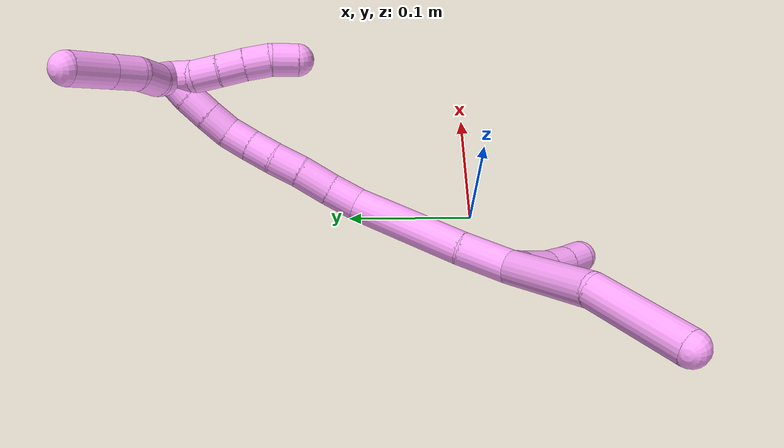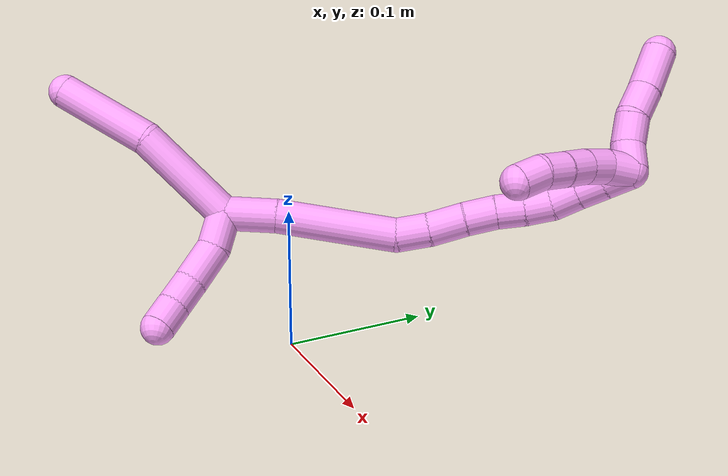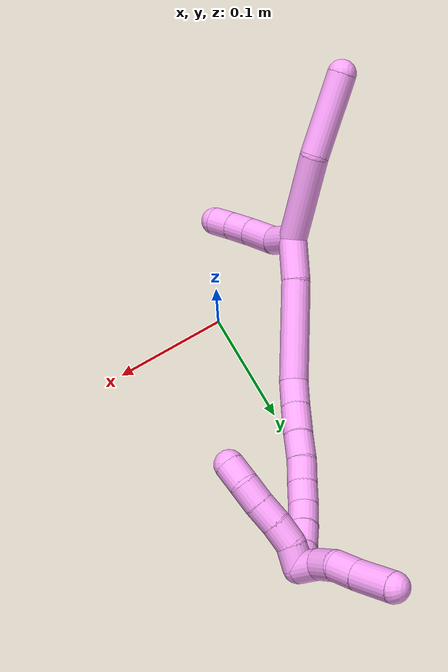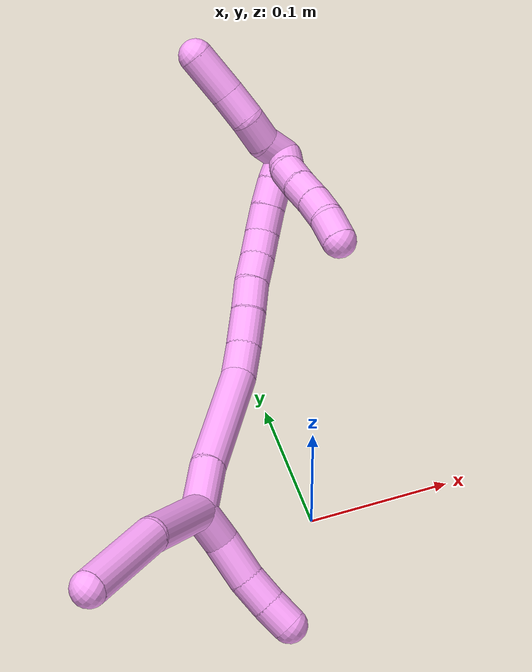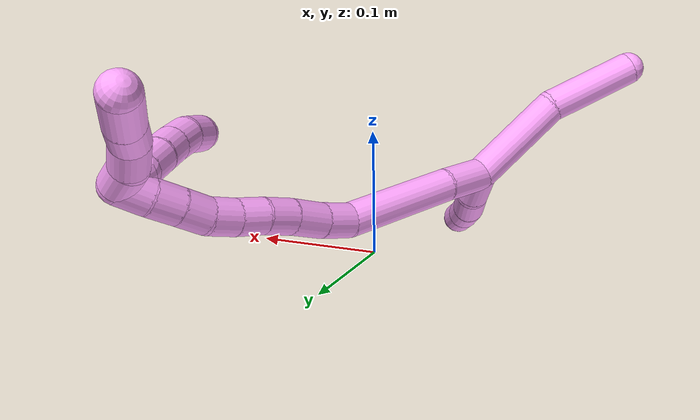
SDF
<sdf version="1.7">
 <world name="default">
  <model name="4">
   <static>0</static>
   <link name="4">
    <collision name="collision-cylinder-e_1_2_8">
     <pose>0.014245 -0.030521 0.019236 1.00843 0.376062 0.20922</pose>
     <geometry><cylinder><radius>0.0125</radius><length>0.077576</length></cylinder></geometry>
     <surface>
      <friction><ode><mu>1.16</mu><mu2>1.16</mu2><slip1>0</slip1><slip2>0</slip2></ode></friction>
      <contact><ode><kp>1e+06</kp><kd>1</kd><max_vel>0</max_vel><min_depth>0.001</min_depth></ode></contact>
     </surface>
    </collision>
    <visual name="visual-cylinder-e_1_2_8">
     <pose>0.014245 -0.030521 0.019236 1.00843 0.376062 0.20922</pose>
     <geometry><cylinder><radius>0.0125</radius><length>0.077576</length></cylinder></geometry>
     <material><ambient>1 0.65098 0.996078 1</ambient></material>
    </visual>
    <collision name="collision-cylinder-e_2_8_6">
     <pose>0.032133 -0.094003 0.05302 1.15515 0.100749 0.065691</pose>
     <geometry><cylinder><radius>0.0125</radius><length>0.072424</length></cylinder></geometry>
     <surface>
      <friction><ode><mu>1.16</mu><mu2>1.16</mu2><slip1>0</slip1><slip2>0</slip2></ode></friction>
      <contact><ode><kp>1e+06</kp><kd>1</kd><max_vel>0</max_vel><min_depth>0.001</min_depth></ode></contact>
     </surface>
    </collision>
    <visual name="visual-cylinder-e_2_8_6">
     <pose>0.032133 -0.094003 0.05302 1.15515 0.100749 0.065691</pose>
     <geometry><cylinder><radius>0.0125</radius><length>0.072424</length></cylinder></geometry>
     <material><ambient>1 0.65098 0.996078 1</ambient></material>
    </visual>
    <collision name="collision-cylinder-e_1_2_9">
     <pose>-0.003852 -0.001873 -0.012768 2.99595 -0.29006 -2.21514</pose>
     <geometry><cylinder><radius>0.0125</radius><length>0.026933</length></cylinder></geometry>
     <surface>
      <friction><ode><mu>1.16</mu><mu2>1.16</mu2><slip1>0</slip1><slip2>0</slip2></ode></friction>
      <contact><ode><kp>1e+06</kp><kd>1</kd><max_vel>0</max_vel><min_depth>0.001</min_depth></ode></contact>
     </surface>
    </collision>
    <visual name="visual-cylinder-e_1_2_9">
     <pose>-0.003852 -0.001873 -0.012768 2.99595 -0.29006 -2.21514</pose>
     <geometry><cylinder><radius>0.0125</radius><length>0.026933</length></cylinder></geometry>
     <material><ambient>1 0.65098 0.996078 1</ambient></material>
    </visual>
    <collision name="collision-cylinder-e_2_9_10">
     <pose>-0.009045 -0.009771 -0.0396 2.73685 -0.087437 -0.420127</pose>
     <geometry><cylinder><radius>0.0125</radius><length>0.03072</length></cylinder></geometry>
     <surface>
      <friction><ode><mu>1.16</mu><mu2>1.16</mu2><slip1>0</slip1><slip2>0</slip2></ode></friction>
      <contact><ode><kp>1e+06</kp><kd>1</kd><max_vel>0</max_vel><min_depth>0.001</min_depth></ode></contact>
     </surface>
    </collision>
    <visual name="visual-cylinder-e_2_9_10">
     <pose>-0.009045 -0.009771 -0.0396 2.73685 -0.087437 -0.420127</pose>
     <geometry><cylinder><radius>0.0125</radius><length>0.03072</length></cylinder></geometry>
     <material><ambient>1 0.65098 0.996078 1</ambient></material>
    </visual>
    <collision name="collision-cylinder-e_3_10_11">
     <pose>-0.009831 -0.019814 -0.064056 2.77264 0.04975 0.265105</pose>
     <geometry><cylinder><radius>0.0125</radius><length>0.022309</length></cylinder></geometry>
     <surface>
      <friction><ode><mu>1.16</mu><mu2>1.16</mu2><slip1>0</slip1><slip2>0</slip2></ode></friction>
      <contact><ode><kp>1e+06</kp><kd>1</kd><max_vel>0</max_vel><min_depth>0.001</min_depth></ode></contact>
     </surface>
    </collision>
    <visual name="visual-cylinder-e_3_10_11">
     <pose>-0.009831 -0.019814 -0.064056 2.77264 0.04975 0.265105</pose>
     <geometry><cylinder><radius>0.0125</radius><length>0.022309</length></cylinder></geometry>
     <material><ambient>1 0.65098 0.996078 1</ambient></material>
    </visual>
    <collision name="collision-cylinder-e_4_11_5">
     <pose>-0.00815 -0.027166 -0.083827 2.80012 0.112708 0.632442</pose>
     <geometry><cylinder><radius>0.0125</radius><length>0.020038</length></cylinder></geometry>
     <surface>
      <friction><ode><mu>1.16</mu><mu2>1.16</mu2><slip1>0</slip1><slip2>0</slip2></ode></friction>
      <contact><ode><kp>1e+06</kp><kd>1</kd><max_vel>0</max_vel><min_depth>0.001</min_depth></ode></contact>
     </surface>
    </collision>
    <visual name="visual-cylinder-e_4_11_5">
     <pose>-0.00815 -0.027166 -0.083827 2.80012 0.112708 0.632442</pose>
     <geometry><cylinder><radius>0.0125</radius><length>0.020038</length></cylinder></geometry>
     <material><ambient>1 0.65098 0.996078 1</ambient></material>
    </visual>
    <collision name="collision-cylinder-e_1_2_12">
     <pose>-0.001303 0.01886 0.001936 -1.46848 -0.068593 0.061915</pose>
     <geometry><cylinder><radius>0.0125</radius><length>0.038008</length></cylinder></geometry>
     <surface>
      <friction><ode><mu>1.16</mu><mu2>1.16</mu2><slip1>0</slip1><slip2>0</slip2></ode></friction>
      <contact><ode><kp>1e+06</kp><kd>1</kd><max_vel>0</max_vel><min_depth>0.001</min_depth></ode></contact>
     </surface>
    </collision>
    <visual name="visual-cylinder-e_1_2_12">
     <pose>-0.001303 0.01886 0.001936 -1.46848 -0.068593 0.061915</pose>
     <geometry><cylinder><radius>0.0125</radius><length>0.038008</length></cylinder></geometry>
     <material><ambient>1 0.65098 0.996078 1</ambient></material>
    </visual>
    <collision name="collision-cylinder-e_2_12_13">
     <pose>-0.006011 0.081358 0.003053 -1.58958 -0.077886 0.079361</pose>
     <geometry><cylinder><radius>0.0125</radius><length>0.087556</length></cylinder></geometry>
     <surface>
      <friction><ode><mu>1.16</mu><mu2>1.16</mu2><slip1>0</slip1><slip2>0</slip2></ode></friction>
      <contact><ode><kp>1e+06</kp><kd>1</kd><max_vel>0</max_vel><min_depth>0.001</min_depth></ode></contact>
     </surface>
    </collision>
    <visual name="visual-cylinder-e_2_12_13">
     <pose>-0.006011 0.081358 0.003053 -1.58958 -0.077886 0.079361</pose>
     <geometry><cylinder><radius>0.0125</radius><length>0.087556</length></cylinder></geometry>
     <material><ambient>1 0.65098 0.996078 1</ambient></material>
    </visual>
    <collision name="collision-cylinder-e_3_13_14">
     <pose>-0.007759 0.136654 0.005046 -1.33409 0.137397 -0.108258</pose>
     <geometry><cylinder><radius>0.0125</radius><length>0.024215</length></cylinder></geometry>
     <surface>
      <friction><ode><mu>1.16</mu><mu2>1.16</mu2><slip1>0</slip1><slip2>0</slip2></ode></friction>
      <contact><ode><kp>1e+06</kp><kd>1</kd><max_vel>0</max_vel><min_depth>0.001</min_depth></ode></contact>
     </surface>
    </collision>
    <visual name="visual-cylinder-e_3_13_14">
     <pose>-0.007759 0.136654 0.005046 -1.33409 0.137397 -0.108258</pose>
     <geometry><cylinder><radius>0.0125</radius><length>0.024215</length></cylinder></geometry>
     <material><ambient>1 0.65098 0.996078 1</ambient></material>
    </visual>
    <collision name="collision-cylinder-e_4_14_15">
     <pose>-0.003217 0.160654 0.011978 -1.2486 0.218134 -0.157449</pose>
     <geometry><cylinder><radius>0.0125</radius><length>0.026652</length></cylinder></geometry>
     <surface>
      <friction><ode><mu>1.16</mu><mu2>1.16</mu2><slip1>0</slip1><slip2>0</slip2></ode></friction>
      <contact><ode><kp>1e+06</kp><kd>1</kd><max_vel>0</max_vel><min_depth>0.001</min_depth></ode></contact>
     </surface>
    </collision>
    <visual name="visual-cylinder-e_4_14_15">
     <pose>-0.003217 0.160654 0.011978 -1.2486 0.218134 -0.157449</pose>
     <geometry><cylinder><radius>0.0125</radius><length>0.026652</length></cylinder></geometry>
     <material><ambient>1 0.65098 0.996078 1</ambient></material>
    </visual>
    <collision name="collision-cylinder-e_5_15_16">
     <pose>0.001206 0.183727 0.019452 -1.26787 0.13608 -0.100112</pose>
     <geometry><cylinder><radius>0.0125</radius><length>0.022698</length></cylinder></geometry>
     <surface>
      <friction><ode><mu>1.16</mu><mu2>1.16</mu2><slip1>0</slip1><slip2>0</slip2></ode></friction>
      <contact><ode><kp>1e+06</kp><kd>1</kd><max_vel>0</max_vel><min_depth>0.001</min_depth></ode></contact>
     </surface>
    </collision>
    <visual name="visual-cylinder-e_5_15_16">
     <pose>0.001206 0.183727 0.019452 -1.26787 0.13608 -0.100112</pose>
     <geometry><cylinder><radius>0.0125</radius><length>0.022698</length></cylinder></geometry>
     <material><ambient>1 0.65098 0.996078 1</ambient></material>
    </visual>
    <collision name="collision-cylinder-e_6_16_17">
     <pose>0.004009 0.204446 0.024595 -1.39353 0.123886 -0.103704</pose>
     <geometry><cylinder><radius>0.0125</radius><length>0.020449</length></cylinder></geometry>
     <surface>
      <friction><ode><mu>1.16</mu><mu2>1.16</mu2><slip1>0</slip1><slip2>0</slip2></ode></friction>
      <contact><ode><kp>1e+06</kp><kd>1</kd><max_vel>0</max_vel><min_depth>0.001</min_depth></ode></contact>
     </surface>
    </collision>
    <visual name="visual-cylinder-e_6_16_17">
     <pose>0.004009 0.204446 0.024595 -1.39353 0.123886 -0.103704</pose>
     <geometry><cylinder><radius>0.0125</radius><length>0.020449</length></cylinder></geometry>
     <material><ambient>1 0.65098 0.996078 1</ambient></material>
    </visual>
    <collision name="collision-cylinder-e_7_17_18">
     <pose>0.007126 0.224017 0.028739 -1.3299 0.185595 -0.14568</pose>
     <geometry><cylinder><radius>0.0125</radius><length>0.020084</length></cylinder></geometry>
     <surface>
      <friction><ode><mu>1.16</mu><mu2>1.16</mu2><slip1>0</slip1><slip2>0</slip2></ode></friction>
      <contact><ode><kp>1e+06</kp><kd>1</kd><max_vel>0</max_vel><min_depth>0.001</min_depth></ode></contact>
     </surface>
    </collision>
    <visual name="visual-cylinder-e_7_17_18">
     <pose>0.007126 0.224017 0.028739 -1.3299 0.185595 -0.14568</pose>
     <geometry><cylinder><radius>0.0125</radius><length>0.020084</length></cylinder></geometry>
     <material><ambient>1 0.65098 0.996078 1</ambient></material>
    </visual>
    <collision name="collision-cylinder-e_8_18_19">
     <pose>0.012996 0.242244 0.034333 -1.21217 0.410491 -0.286599</pose>
     <geometry><cylinder><radius>0.0125</radius><length>0.020132</length></cylinder></geometry>
     <surface>
      <friction><ode><mu>1.16</mu><mu2>1.16</mu2><slip1>0</slip1><slip2>0</slip2></ode></friction>
      <contact><ode><kp>1e+06</kp><kd>1</kd><max_vel>0</max_vel><min_depth>0.001</min_depth></ode></contact>
     </surface>
    </collision>
    <visual name="visual-cylinder-e_8_18_19">
     <pose>0.012996 0.242244 0.034333 -1.21217 0.410491 -0.286599</pose>
     <geometry><cylinder><radius>0.0125</radius><length>0.020132</length></cylinder></geometry>
     <material><ambient>1 0.65098 0.996078 1</ambient></material>
    </visual>
    <collision name="collision-cylinder-e_9_19_20">
     <pose>0.0212 0.259636 0.040332 -1.26528 0.428142 -0.316123</pose>
     <geometry><cylinder><radius>0.0125</radius><length>0.020169</length></cylinder></geometry>
     <surface>
      <friction><ode><mu>1.16</mu><mu2>1.16</mu2><slip1>0</slip1><slip2>0</slip2></ode></friction>
      <contact><ode><kp>1e+06</kp><kd>1</kd><max_vel>0</max_vel><min_depth>0.001</min_depth></ode></contact>
     </surface>
    </collision>
    <visual name="visual-cylinder-e_9_19_20">
     <pose>0.0212 0.259636 0.040332 -1.26528 0.428142 -0.316123</pose>
     <geometry><cylinder><radius>0.0125</radius><length>0.020169</length></cylinder></geometry>
     <material><ambient>1 0.65098 0.996078 1</ambient></material>
    </visual>
    <collision name="collision-cylinder-e_10_20_1">
     <pose>0.030441 0.276785 0.045163 -1.32908 0.528814 -0.418014</pose>
     <geometry><cylinder><radius>0.0125</radius><length>0.020038</length></cylinder></geometry>
     <surface>
      <friction><ode><mu>1.16</mu><mu2>1.16</mu2><slip1>0</slip1><slip2>0</slip2></ode></friction>
      <contact><ode><kp>1e+06</kp><kd>1</kd><max_vel>0</max_vel><min_depth>0.001</min_depth></ode></contact>
     </surface>
    </collision>
    <visual name="visual-cylinder-e_10_20_1">
     <pose>0.030441 0.276785 0.045163 -1.32908 0.528814 -0.418014</pose>
     <geometry><cylinder><radius>0.0125</radius><length>0.020038</length></cylinder></geometry>
     <material><ambient>1 0.65098 0.996078 1</ambient></material>
    </visual>
    <collision name="collision-cylinder-e_1_1_21">
     <pose>0.039375 0.276073 0.045838 1.72279 0.398325 0.46183</pose>
     <geometry><cylinder><radius>0.0125</radius><length>0.02</length></cylinder></geometry>
     <surface>
      <friction><ode><mu>1.16</mu><mu2>1.16</mu2><slip1>0</slip1><slip2>0</slip2></ode></friction>
      <contact><ode><kp>1e+06</kp><kd>1</kd><max_vel>0</max_vel><min_depth>0.001</min_depth></ode></contact>
     </surface>
    </collision>
    <visual name="visual-cylinder-e_1_1_21">
     <pose>0.039375 0.276073 0.045838 1.72279 0.398325 0.46183</pose>
     <geometry><cylinder><radius>0.0125</radius><length>0.02</length></cylinder></geometry>
     <material><ambient>1 0.65098 0.996078 1</ambient></material>
    </visual>
    <collision name="collision-cylinder-e_2_21_22">
     <pose>0.048164 0.259373 0.040165 2.08406 0.513356 0.844427</pose>
     <geometry><cylinder><radius>0.0125</radius><length>0.02</length></cylinder></geometry>
     <surface>
      <friction><ode><mu>1.16</mu><mu2>1.16</mu2><slip1>0</slip1><slip2>0</slip2></ode></friction>
      <contact><ode><kp>1e+06</kp><kd>1</kd><max_vel>0</max_vel><min_depth>0.001</min_depth></ode></contact>
     </surface>
    </collision>
    <visual name="visual-cylinder-e_2_21_22">
     <pose>0.048164 0.259373 0.040165 2.08406 0.513356 0.844427</pose>
     <geometry><cylinder><radius>0.0125</radius><length>0.02</length></cylinder></geometry>
     <material><ambient>1 0.65098 0.996078 1</ambient></material>
    </visual>
    <collision name="collision-cylinder-e_3_22_23">
     <pose>0.0579 0.244705 0.030729 2.20047 0.50344 0.936202</pose>
     <geometry><cylinder><radius>0.0125</radius><length>0.02</length></cylinder></geometry>
     <surface>
      <friction><ode><mu>1.16</mu><mu2>1.16</mu2><slip1>0</slip1><slip2>0</slip2></ode></friction>
      <contact><ode><kp>1e+06</kp><kd>1</kd><max_vel>0</max_vel><min_depth>0.001</min_depth></ode></contact>
     </surface>
    </collision>
    <visual name="visual-cylinder-e_3_22_23">
     <pose>0.0579 0.244705 0.030729 2.20047 0.50344 0.936202</pose>
     <geometry><cylinder><radius>0.0125</radius><length>0.02</length></cylinder></geometry>
     <material><ambient>1 0.65098 0.996078 1</ambient></material>
    </visual>
    <collision name="collision-cylinder-e_4_23_24">
     <pose>0.067108 0.230055 0.020727 2.14 0.453812 0.798364</pose>
     <geometry><cylinder><radius>0.0125</radius><length>0.02</length></cylinder></geometry>
     <surface>
      <friction><ode><mu>1.16</mu><mu2>1.16</mu2><slip1>0</slip1><slip2>0</slip2></ode></friction>
      <contact><ode><kp>1e+06</kp><kd>1</kd><max_vel>0</max_vel><min_depth>0.001</min_depth></ode></contact>
     </surface>
    </collision>
    <visual name="visual-cylinder-e_4_23_24">
     <pose>0.067108 0.230055 0.020727 2.14 0.453812 0.798364</pose>
     <geometry><cylinder><radius>0.0125</radius><length>0.02</length></cylinder></geometry>
     <material><ambient>1 0.65098 0.996078 1</ambient></material>
    </visual>
    <collision name="collision-cylinder-e_5_24_4">
     <pose>0.073658 0.214973 0.009647 2.26363 0.218279 0.458532</pose>
     <geometry><cylinder><radius>0.0125</radius><length>0.02</length></cylinder></geometry>
     <surface>
      <friction><ode><mu>1.16</mu><mu2>1.16</mu2><slip1>0</slip1><slip2>0</slip2></ode></friction>
      <contact><ode><kp>1e+06</kp><kd>1</kd><max_vel>0</max_vel><min_depth>0.001</min_depth></ode></contact>
     </surface>
    </collision>
    <visual name="visual-cylinder-e_5_24_4">
     <pose>0.073658 0.214973 0.009647 2.26363 0.218279 0.458532</pose>
     <geometry><cylinder><radius>0.0125</radius><length>0.02</length></cylinder></geometry>
     <material><ambient>1 0.65098 0.996078 1</ambient></material>
    </visual>
    <collision name="collision-cylinder-e_1_1_25">
     <pose>0.036392 0.283557 0.057277 0.16058 0.087864 0.007074</pose>
     <geometry><cylinder><radius>0.0125</radius><length>0.020427</length></cylinder></geometry>
     <surface>
      <friction><ode><mu>1.16</mu><mu2>1.16</mu2><slip1>0</slip1><slip2>0</slip2></ode></friction>
      <contact><ode><kp>1e+06</kp><kd>1</kd><max_vel>0</max_vel><min_depth>0.001</min_depth></ode></contact>
     </surface>
    </collision>
    <visual name="visual-cylinder-e_1_1_25">
     <pose>0.036392 0.283557 0.057277 0.16058 0.087864 0.007074</pose>
     <geometry><cylinder><radius>0.0125</radius><length>0.020427</length></cylinder></geometry>
     <material><ambient>1 0.65098 0.996078 1</ambient></material>
    </visual>
    <collision name="collision-cylinder-e_2_25_26">
     <pose>0.04077 0.282697 0.077773 -0.073236 0.320738 -0.011852</pose>
     <geometry><cylinder><radius>0.0125</radius><length>0.022089</length></cylinder></geometry>
     <surface>
      <friction><ode><mu>1.16</mu><mu2>1.16</mu2><slip1>0</slip1><slip2>0</slip2></ode></friction>
      <contact><ode><kp>1e+06</kp><kd>1</kd><max_vel>0</max_vel><min_depth>0.001</min_depth></ode></contact>
     </surface>
    </collision>
    <visual name="visual-cylinder-e_2_25_26">
     <pose>0.04077 0.282697 0.077773 -0.073236 0.320738 -0.011852</pose>
     <geometry><cylinder><radius>0.0125</radius><length>0.022089</length></cylinder></geometry>
     <material><ambient>1 0.65098 0.996078 1</ambient></material>
    </visual>
    <collision name="collision-cylinder-e_3_26_27">
     <pose>0.044994 0.286963 0.09911 -0.311017 0.064773 -0.010158</pose>
     <geometry><cylinder><radius>0.0125</radius><length>0.022914</length></cylinder></geometry>
     <surface>
      <friction><ode><mu>1.16</mu><mu2>1.16</mu2><slip1>0</slip1><slip2>0</slip2></ode></friction>
      <contact><ode><kp>1e+06</kp><kd>1</kd><max_vel>0</max_vel><min_depth>0.001</min_depth></ode></contact>
     </surface>
    </collision>
    <visual name="visual-cylinder-e_3_26_27">
     <pose>0.044994 0.286963 0.09911 -0.311017 0.064773 -0.010158</pose>
     <geometry><cylinder><radius>0.0125</radius><length>0.022914</length></cylinder></geometry>
     <material><ambient>1 0.65098 0.996078 1</ambient></material>
    </visual>
    <collision name="collision-cylinder-e_4_27_3">
     <pose>0.047124 0.294734 0.126686 -0.250614 0.080409 -0.010134</pose>
     <geometry><cylinder><radius>0.0125</radius><length>0.03457</length></cylinder></geometry>
     <surface>
      <friction><ode><mu>1.16</mu><mu2>1.16</mu2><slip1>0</slip1><slip2>0</slip2></ode></friction>
      <contact><ode><kp>1e+06</kp><kd>1</kd><max_vel>0</max_vel><min_depth>0.001</min_depth></ode></contact>
     </surface>
    </collision>
    <visual name="visual-cylinder-e_4_27_3">
     <pose>0.047124 0.294734 0.126686 -0.250614 0.080409 -0.010134</pose>
     <geometry><cylinder><radius>0.0125</radius><length>0.03457</length></cylinder></geometry>
     <material><ambient>1 0.65098 0.996078 1</ambient></material>
    </visual>
    <collision name="collision-sphere-3">
     <pose>0.048512 0.299007 0.143377 0 -0 0</pose>
     <geometry><sphere><radius>0.0125</radius></sphere></geometry>
     <surface>
      <friction><ode><mu>1.16</mu><mu2>1.16</mu2><slip1>0</slip1><slip2>0</slip2></ode></friction>
      <contact><ode><kp>1e+06</kp><kd>1</kd><max_vel>0</max_vel><min_depth>0.001</min_depth></ode></contact>
     </surface>
    </collision>
    <visual name="visual-sphere-3">
     <pose>0.048512 0.299007 0.143377 0 -0 0</pose>
     <geometry><sphere><radius>0.0125</radius></sphere></geometry>
     <material><ambient>1 0.65098 0.996078 1</ambient></material>
    </visual>
    <collision name="collision-sphere-27">
     <pose>0.045735 0.290461 0.109995 0 -0 0</pose>
     <geometry><sphere><radius>0.0125</radius></sphere></geometry>
     <surface>
      <friction><ode><mu>1.16</mu><mu2>1.16</mu2><slip1>0</slip1><slip2>0</slip2></ode></friction>
      <contact><ode><kp>1e+06</kp><kd>1</kd><max_vel>0</max_vel><min_depth>0.001</min_depth></ode></contact>
     </surface>
    </collision>
    <visual name="visual-sphere-27">
     <pose>0.045735 0.290461 0.109995 0 -0 0</pose>
     <geometry><sphere><radius>0.0125</radius></sphere></geometry>
     <material><ambient>1 0.65098 0.996078 1</ambient></material>
    </visual>
    <collision name="collision-sphere-26">
     <pose>0.044252 0.283464 0.088226 0 -0 0</pose>
     <geometry><sphere><radius>0.0125</radius></sphere></geometry>
     <surface>
      <friction><ode><mu>1.16</mu><mu2>1.16</mu2><slip1>0</slip1><slip2>0</slip2></ode></friction>
      <contact><ode><kp>1e+06</kp><kd>1</kd><max_vel>0</max_vel><min_depth>0.001</min_depth></ode></contact>
     </surface>
    </collision>
    <visual name="visual-sphere-26">
     <pose>0.044252 0.283464 0.088226 0 -0 0</pose>
     <geometry><sphere><radius>0.0125</radius></sphere></geometry>
     <material><ambient>1 0.65098 0.996078 1</ambient></material>
    </visual>
    <collision name="collision-sphere-25">
     <pose>0.037288 0.28193 0.06732 0 -0 0</pose>
     <geometry><sphere><radius>0.0125</radius></sphere></geometry>
     <surface>
      <friction><ode><mu>1.16</mu><mu2>1.16</mu2><slip1>0</slip1><slip2>0</slip2></ode></friction>
      <contact><ode><kp>1e+06</kp><kd>1</kd><max_vel>0</max_vel><min_depth>0.001</min_depth></ode></contact>
     </surface>
    </collision>
    <visual name="visual-sphere-25">
     <pose>0.037288 0.28193 0.06732 0 -0 0</pose>
     <geometry><sphere><radius>0.0125</radius></sphere></geometry>
     <material><ambient>1 0.65098 0.996078 1</ambient></material>
    </visual>
    <collision name="collision-sphere-4">
     <pose>0.075823 0.207461 0.003412 0 -0 0</pose>
     <geometry><sphere><radius>0.0125</radius></sphere></geometry>
     <surface>
      <friction><ode><mu>1.16</mu><mu2>1.16</mu2><slip1>0</slip1><slip2>0</slip2></ode></friction>
      <contact><ode><kp>1e+06</kp><kd>1</kd><max_vel>0</max_vel><min_depth>0.001</min_depth></ode></contact>
     </surface>
    </collision>
    <visual name="visual-sphere-4">
     <pose>0.075823 0.207461 0.003412 0 -0 0</pose>
     <geometry><sphere><radius>0.0125</radius></sphere></geometry>
     <material><ambient>1 0.65098 0.996078 1</ambient></material>
    </visual>
    <collision name="collision-sphere-24">
     <pose>0.071492 0.222484 0.015883 0 -0 0</pose>
     <geometry><sphere><radius>0.0125</radius></sphere></geometry>
     <surface>
      <friction><ode><mu>1.16</mu><mu2>1.16</mu2><slip1>0</slip1><slip2>0</slip2></ode></friction>
      <contact><ode><kp>1e+06</kp><kd>1</kd><max_vel>0</max_vel><min_depth>0.001</min_depth></ode></contact>
     </surface>
    </collision>
    <visual name="visual-sphere-24">
     <pose>0.071492 0.222484 0.015883 0 -0 0</pose>
     <geometry><sphere><radius>0.0125</radius></sphere></geometry>
     <material><ambient>1 0.65098 0.996078 1</ambient></material>
    </visual>
    <collision name="collision-sphere-23">
     <pose>0.062724 0.237626 0.025571 0 -0 0</pose>
     <geometry><sphere><radius>0.0125</radius></sphere></geometry>
     <surface>
      <friction><ode><mu>1.16</mu><mu2>1.16</mu2><slip1>0</slip1><slip2>0</slip2></ode></friction>
      <contact><ode><kp>1e+06</kp><kd>1</kd><max_vel>0</max_vel><min_depth>0.001</min_depth></ode></contact>
     </surface>
    </collision>
    <visual name="visual-sphere-23">
     <pose>0.062724 0.237626 0.025571 0 -0 0</pose>
     <geometry><sphere><radius>0.0125</radius></sphere></geometry>
     <material><ambient>1 0.65098 0.996078 1</ambient></material>
    </visual>
    <collision name="collision-sphere-22">
     <pose>0.053075 0.251785 0.035887 0 -0 0</pose>
     <geometry><sphere><radius>0.0125</radius></sphere></geometry>
     <surface>
      <friction><ode><mu>1.16</mu><mu2>1.16</mu2><slip1>0</slip1><slip2>0</slip2></ode></friction>
      <contact><ode><kp>1e+06</kp><kd>1</kd><max_vel>0</max_vel><min_depth>0.001</min_depth></ode></contact>
     </surface>
    </collision>
    <visual name="visual-sphere-22">
     <pose>0.053075 0.251785 0.035887 0 -0 0</pose>
     <geometry><sphere><radius>0.0125</radius></sphere></geometry>
     <material><ambient>1 0.65098 0.996078 1</ambient></material>
    </visual>
    <collision name="collision-sphere-21">
     <pose>0.043253 0.266962 0.044442 0 -0 0</pose>
     <geometry><sphere><radius>0.0125</radius></sphere></geometry>
     <surface>
      <friction><ode><mu>1.16</mu><mu2>1.16</mu2><slip1>0</slip1><slip2>0</slip2></ode></friction>
      <contact><ode><kp>1e+06</kp><kd>1</kd><max_vel>0</max_vel><min_depth>0.001</min_depth></ode></contact>
     </surface>
    </collision>
    <visual name="visual-sphere-21">
     <pose>0.043253 0.266962 0.044442 0 -0 0</pose>
     <geometry><sphere><radius>0.0125</radius></sphere></geometry>
     <material><ambient>1 0.65098 0.996078 1</ambient></material>
    </visual>
    <collision name="collision-sphere-1">
     <pose>0.035496 0.285184 0.047233 0 -0 0</pose>
     <geometry><sphere><radius>0.0125</radius></sphere></geometry>
     <surface>
      <friction><ode><mu>1.16</mu><mu2>1.16</mu2><slip1>0</slip1><slip2>0</slip2></ode></friction>
      <contact><ode><kp>1e+06</kp><kd>1</kd><max_vel>0</max_vel><min_depth>0.001</min_depth></ode></contact>
     </surface>
    </collision>
    <visual name="visual-sphere-1">
     <pose>0.035496 0.285184 0.047233 0 -0 0</pose>
     <geometry><sphere><radius>0.0125</radius></sphere></geometry>
     <material><ambient>1 0.65098 0.996078 1</ambient></material>
    </visual>
    <collision name="collision-sphere-11">
     <pose>-0.009276 -0.023832 -0.074447 0 -0 0</pose>
     <geometry><sphere><radius>0.0125</radius></sphere></geometry>
     <surface>
      <friction><ode><mu>1.16</mu><mu2>1.16</mu2><slip1>0</slip1><slip2>0</slip2></ode></friction>
      <contact><ode><kp>1e+06</kp><kd>1</kd><max_vel>0</max_vel><min_depth>0.001</min_depth></ode></contact>
     </surface>
    </collision>
    <visual name="visual-sphere-11">
     <pose>-0.009276 -0.023832 -0.074447 0 -0 0</pose>
     <geometry><sphere><radius>0.0125</radius></sphere></geometry>
     <material><ambient>1 0.65098 0.996078 1</ambient></material>
    </visual>
    <collision name="collision-sphere-10">
     <pose>-0.010386 -0.015796 -0.053665 0 -0 0</pose>
     <geometry><sphere><radius>0.0125</radius></sphere></geometry>
     <surface>
      <friction><ode><mu>1.16</mu><mu2>1.16</mu2><slip1>0</slip1><slip2>0</slip2></ode></friction>
      <contact><ode><kp>1e+06</kp><kd>1</kd><max_vel>0</max_vel><min_depth>0.001</min_depth></ode></contact>
     </surface>
    </collision>
    <visual name="visual-sphere-10">
     <pose>-0.010386 -0.015796 -0.053665 0 -0 0</pose>
     <geometry><sphere><radius>0.0125</radius></sphere></geometry>
     <material><ambient>1 0.65098 0.996078 1</ambient></material>
    </visual>
    <collision name="collision-sphere-6">
     <pose>0.035775 -0.126964 0.067567 0 -0 0</pose>
     <geometry><sphere><radius>0.0125</radius></sphere></geometry>
     <surface>
      <friction><ode><mu>1.16</mu><mu2>1.16</mu2><slip1>0</slip1><slip2>0</slip2></ode></friction>
      <contact><ode><kp>1e+06</kp><kd>1</kd><max_vel>0</max_vel><min_depth>0.001</min_depth></ode></contact>
     </surface>
    </collision>
    <visual name="visual-sphere-6">
     <pose>0.035775 -0.126964 0.067567 0 -0 0</pose>
     <geometry><sphere><radius>0.0125</radius></sphere></geometry>
     <material><ambient>1 0.65098 0.996078 1</ambient></material>
    </visual>
    <collision name="collision-sphere-9">
     <pose>-0.007703 -0.003746 -0.025535 0 -0 0</pose>
     <geometry><sphere><radius>0.0125</radius></sphere></geometry>
     <surface>
      <friction><ode><mu>1.16</mu><mu2>1.16</mu2><slip1>0</slip1><slip2>0</slip2></ode></friction>
      <contact><ode><kp>1e+06</kp><kd>1</kd><max_vel>0</max_vel><min_depth>0.001</min_depth></ode></contact>
     </surface>
    </collision>
    <visual name="visual-sphere-9">
     <pose>-0.007703 -0.003746 -0.025535 0 -0 0</pose>
     <geometry><sphere><radius>0.0125</radius></sphere></geometry>
     <material><ambient>1 0.65098 0.996078 1</ambient></material>
    </visual>
    <collision name="collision-sphere-2">
     <geometry><sphere><radius>0.0125</radius></sphere></geometry>
     <surface>
      <friction><ode><mu>1.16</mu><mu2>1.16</mu2><slip1>0</slip1><slip2>0</slip2></ode></friction>
      <contact><ode><kp>1e+06</kp><kd>1</kd><max_vel>0</max_vel><min_depth>0.001</min_depth></ode></contact>
     </surface>
    </collision>
    <visual name="visual-sphere-2">
     <geometry><sphere><radius>0.0125</radius></sphere></geometry>
     <material><ambient>1 0.65098 0.996078 1</ambient></material>
    </visual>
    <collision name="collision-sphere-19">
     <pose>0.017013 0.250887 0.037573 0 -0 0</pose>
     <geometry><sphere><radius>0.0125</radius></sphere></geometry>
     <surface>
      <friction><ode><mu>1.16</mu><mu2>1.16</mu2><slip1>0</slip1><slip2>0</slip2></ode></friction>
      <contact><ode><kp>1e+06</kp><kd>1</kd><max_vel>0</max_vel><min_depth>0.001</min_depth></ode></contact>
     </surface>
    </collision>
    <visual name="visual-sphere-19">
     <pose>0.017013 0.250887 0.037573 0 -0 0</pose>
     <geometry><sphere><radius>0.0125</radius></sphere></geometry>
     <material><ambient>1 0.65098 0.996078 1</ambient></material>
    </visual>
    <collision name="collision-sphere-8">
     <pose>0.02849 -0.061042 0.038472 0 -0 0</pose>
     <geometry><sphere><radius>0.0125</radius></sphere></geometry>
     <surface>
      <friction><ode><mu>1.16</mu><mu2>1.16</mu2><slip1>0</slip1><slip2>0</slip2></ode></friction>
      <contact><ode><kp>1e+06</kp><kd>1</kd><max_vel>0</max_vel><min_depth>0.001</min_depth></ode></contact>
     </surface>
    </collision>
    <visual name="visual-sphere-8">
     <pose>0.02849 -0.061042 0.038472 0 -0 0</pose>
     <geometry><sphere><radius>0.0125</radius></sphere></geometry>
     <material><ambient>1 0.65098 0.996078 1</ambient></material>
    </visual>
    <collision name="collision-sphere-5">
     <pose>-0.007023 -0.030499 -0.093208 0 -0 0</pose>
     <geometry><sphere><radius>0.0125</radius></sphere></geometry>
     <surface>
      <friction><ode><mu>1.16</mu><mu2>1.16</mu2><slip1>0</slip1><slip2>0</slip2></ode></friction>
      <contact><ode><kp>1e+06</kp><kd>1</kd><max_vel>0</max_vel><min_depth>0.001</min_depth></ode></contact>
     </surface>
    </collision>
    <visual name="visual-sphere-5">
     <pose>-0.007023 -0.030499 -0.093208 0 -0 0</pose>
     <geometry><sphere><radius>0.0125</radius></sphere></geometry>
     <material><ambient>1 0.65098 0.996078 1</ambient></material>
    </visual>
    <collision name="collision-sphere-12">
     <pose>-0.002605 0.037721 0.003873 0 -0 0</pose>
     <geometry><sphere><radius>0.0125</radius></sphere></geometry>
     <surface>
      <friction><ode><mu>1.16</mu><mu2>1.16</mu2><slip1>0</slip1><slip2>0</slip2></ode></friction>
      <contact><ode><kp>1e+06</kp><kd>1</kd><max_vel>0</max_vel><min_depth>0.001</min_depth></ode></contact>
     </surface>
    </collision>
    <visual name="visual-sphere-12">
     <pose>-0.002605 0.037721 0.003873 0 -0 0</pose>
     <geometry><sphere><radius>0.0125</radius></sphere></geometry>
     <material><ambient>1 0.65098 0.996078 1</ambient></material>
    </visual>
    <collision name="collision-sphere-13">
     <pose>-0.009417 0.124995 0.002234 0 -0 0</pose>
     <geometry><sphere><radius>0.0125</radius></sphere></geometry>
     <surface>
      <friction><ode><mu>1.16</mu><mu2>1.16</mu2><slip1>0</slip1><slip2>0</slip2></ode></friction>
      <contact><ode><kp>1e+06</kp><kd>1</kd><max_vel>0</max_vel><min_depth>0.001</min_depth></ode></contact>
     </surface>
    </collision>
    <visual name="visual-sphere-13">
     <pose>-0.009417 0.124995 0.002234 0 -0 0</pose>
     <geometry><sphere><radius>0.0125</radius></sphere></geometry>
     <material><ambient>1 0.65098 0.996078 1</ambient></material>
    </visual>
    <collision name="collision-sphere-14">
     <pose>-0.006101 0.148313 0.007859 0 -0 0</pose>
     <geometry><sphere><radius>0.0125</radius></sphere></geometry>
     <surface>
      <friction><ode><mu>1.16</mu><mu2>1.16</mu2><slip1>0</slip1><slip2>0</slip2></ode></friction>
      <contact><ode><kp>1e+06</kp><kd>1</kd><max_vel>0</max_vel><min_depth>0.001</min_depth></ode></contact>
     </surface>
    </collision>
    <visual name="visual-sphere-14">
     <pose>-0.006101 0.148313 0.007859 0 -0 0</pose>
     <geometry><sphere><radius>0.0125</radius></sphere></geometry>
     <material><ambient>1 0.65098 0.996078 1</ambient></material>
    </visual>
    <collision name="collision-sphere-15">
     <pose>-0.000333 0.172995 0.016098 0 -0 0</pose>
     <geometry><sphere><radius>0.0125</radius></sphere></geometry>
     <surface>
      <friction><ode><mu>1.16</mu><mu2>1.16</mu2><slip1>0</slip1><slip2>0</slip2></ode></friction>
      <contact><ode><kp>1e+06</kp><kd>1</kd><max_vel>0</max_vel><min_depth>0.001</min_depth></ode></contact>
     </surface>
    </collision>
    <visual name="visual-sphere-15">
     <pose>-0.000333 0.172995 0.016098 0 -0 0</pose>
     <geometry><sphere><radius>0.0125</radius></sphere></geometry>
     <material><ambient>1 0.65098 0.996078 1</ambient></material>
    </visual>
    <collision name="collision-sphere-16">
     <pose>0.002746 0.194459 0.022806 0 -0 0</pose>
     <geometry><sphere><radius>0.0125</radius></sphere></geometry>
     <surface>
      <friction><ode><mu>1.16</mu><mu2>1.16</mu2><slip1>0</slip1><slip2>0</slip2></ode></friction>
      <contact><ode><kp>1e+06</kp><kd>1</kd><max_vel>0</max_vel><min_depth>0.001</min_depth></ode></contact>
     </surface>
    </collision>
    <visual name="visual-sphere-16">
     <pose>0.002746 0.194459 0.022806 0 -0 0</pose>
     <geometry><sphere><radius>0.0125</radius></sphere></geometry>
     <material><ambient>1 0.65098 0.996078 1</ambient></material>
    </visual>
    <collision name="collision-sphere-17">
     <pose>0.005273 0.214433 0.026385 0 -0 0</pose>
     <geometry><sphere><radius>0.0125</radius></sphere></geometry>
     <surface>
      <friction><ode><mu>1.16</mu><mu2>1.16</mu2><slip1>0</slip1><slip2>0</slip2></ode></friction>
      <contact><ode><kp>1e+06</kp><kd>1</kd><max_vel>0</max_vel><min_depth>0.001</min_depth></ode></contact>
     </surface>
    </collision>
    <visual name="visual-sphere-17">
     <pose>0.005273 0.214433 0.026385 0 -0 0</pose>
     <geometry><sphere><radius>0.0125</radius></sphere></geometry>
     <material><ambient>1 0.65098 0.996078 1</ambient></material>
    </visual>
    <collision name="collision-sphere-18">
     <pose>0.008979 0.233602 0.031094 0 -0 0</pose>
     <geometry><sphere><radius>0.0125</radius></sphere></geometry>
     <surface>
      <friction><ode><mu>1.16</mu><mu2>1.16</mu2><slip1>0</slip1><slip2>0</slip2></ode></friction>
      <contact><ode><kp>1e+06</kp><kd>1</kd><max_vel>0</max_vel><min_depth>0.001</min_depth></ode></contact>
     </surface>
    </collision>
    <visual name="visual-sphere-18">
     <pose>0.008979 0.233602 0.031094 0 -0 0</pose>
     <geometry><sphere><radius>0.0125</radius></sphere></geometry>
     <material><ambient>1 0.65098 0.996078 1</ambient></material>
    </visual>
    <collision name="collision-sphere-20">
     <pose>0.025387 0.268386 0.043092 0 -0 0</pose>
     <geometry><sphere><radius>0.0125</radius></sphere></geometry>
     <surface>
      <friction><ode><mu>1.16</mu><mu2>1.16</mu2><slip1>0</slip1><slip2>0</slip2></ode></friction>
      <contact><ode><kp>1e+06</kp><kd>1</kd><max_vel>0</max_vel><min_depth>0.001</min_depth></ode></contact>
     </surface>
    </collision>
    <visual name="visual-sphere-20">
     <pose>0.025387 0.268386 0.043092 0 -0 0</pose>
     <geometry><sphere><radius>0.0125</radius></sphere></geometry>
     <material><ambient>1 0.65098 0.996078 1</ambient></material>
    </visual>
    <inertial>
     <pose>0.017864 0.115643 0.02381 0 -0 0</pose>
     <mass>0.75</mass>
     <inertia>
      <ixx>0.000194</ixx>
      <ixy>0</ixy>
      <ixz>0</ixz>
      <iyy>6.8e-05</iyy>
      <iyz>0</iyz>
      <izz>-2.2e-05</izz>
     </inertia>
    </inertial>
   </link>
   <pose>-0.08433 -0.014459 0.070485 -0.099874 -0.933836 -0.503516</pose>
  </model>
 </world>
</sdf>
